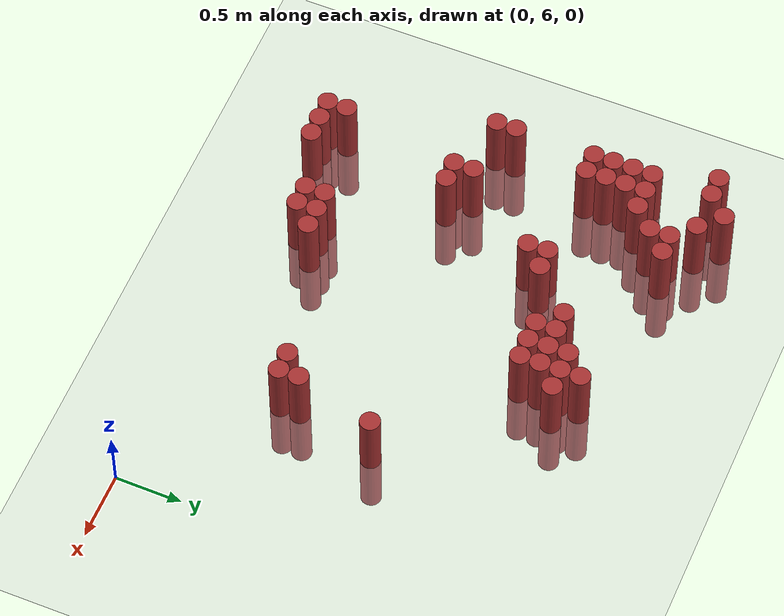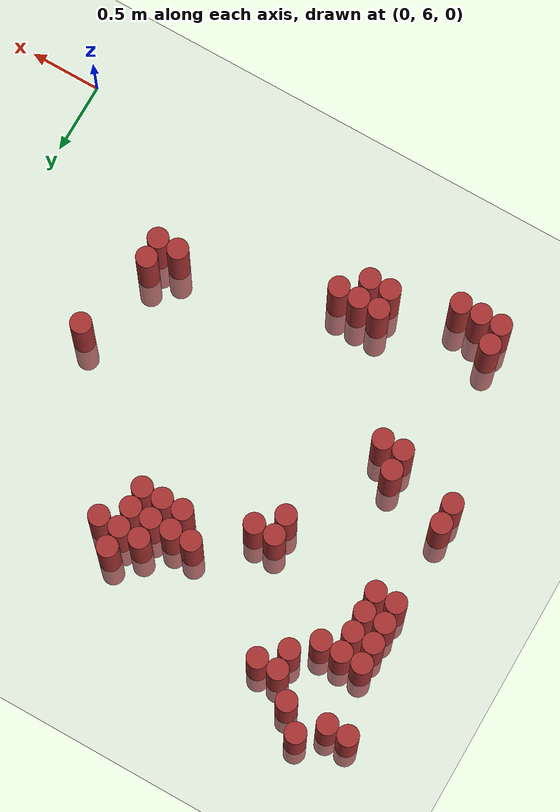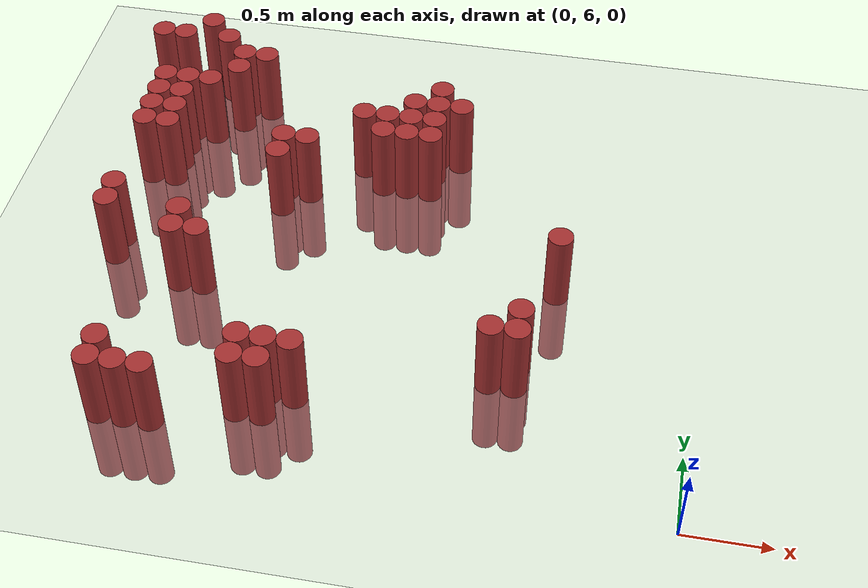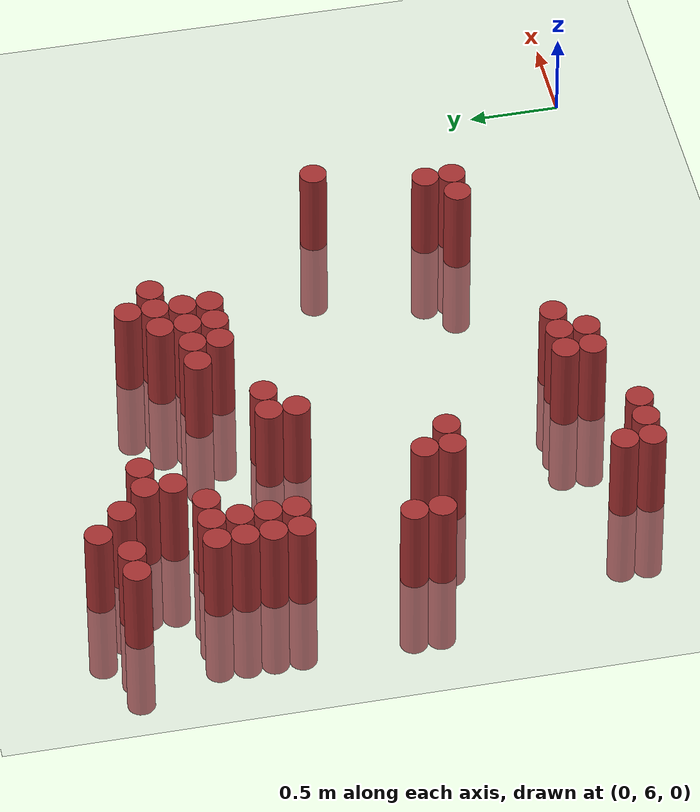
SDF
<sdf version="1.6">
 <world name="default">
  <model name="ground_plane">
   <static>1</static>
   <link name="link">
    <collision name="collision">
     <geometry><plane><normal>0 0 1</normal><size>100 100</size></plane></geometry>
     <surface><friction><ode><mu>100</mu><mu2>50</mu2></ode></friction></surface>
    </collision>
    <visual name="visual">
     <cast_shadows>0</cast_shadows>
     <geometry><plane><normal>0 0 1</normal><size>100 100</size></plane></geometry>
     <material>
      <script><uri>file://media/materials/scripts/gazebo.material</uri><name>Gazebo/Grey</name></script>
     </material>
    </visual>
   </link>
  </model>
  <model name="unit_cylinder_157">
   <static>1</static>
   <pose>-3.675000 9.075000 0.000000 0.000000 0.000000 0.000000</pose>
   <link name="link">
    <inertial>
     <mass>1</mass>
     <inertia><ixx>0.145833</ixx><ixy>0</ixy><ixz>0</ixz><iyy>0.145833</iyy><iyz>0</iyz><izz>0.125</izz></inertia>
    </inertial>
    <collision name="collision">
     <geometry><cylinder><radius>0.075000</radius><length>1</length></cylinder></geometry>
    </collision>
    <visual name="visual">
     <geometry><cylinder><radius>0.075000</radius><length>1</length></cylinder></geometry>
     <material>
      <ambient>0.648000 0.192000 0.192000 1</ambient>
      <diffuse>0.648000 0.192000 0.192000 1</diffuse>
     </material>
     <material>
      <script><name>Gazebo/Grey</name><uri>file://media/materials/scripts/gazebo.material</uri></script>
     </material>
    </visual>
   </link>
  </model>
  <model name="unit_cylinder_158">
   <static>1</static>
   <pose>-3.525000 7.425000 0.000000 0.000000 0.000000 0.000000</pose>
   <link name="link">
    <inertial>
     <mass>1</mass>
     <inertia><ixx>0.145833</ixx><ixy>0</ixy><ixz>0</ixz><iyy>0.145833</iyy><iyz>0</iyz><izz>0.125</izz></inertia>
    </inertial>
    <collision name="collision">
     <geometry><cylinder><radius>0.075000</radius><length>1</length></cylinder></geometry>
    </collision>
    <visual name="visual">
     <geometry><cylinder><radius>0.075000</radius><length>1</length></cylinder></geometry>
     <material>
      <ambient>0.648000 0.192000 0.192000 1</ambient>
      <diffuse>0.648000 0.192000 0.192000 1</diffuse>
     </material>
     <material>
      <script><name>Gazebo/Grey</name><uri>file://media/materials/scripts/gazebo.material</uri></script>
     </material>
    </visual>
   </link>
  </model>
  <model name="unit_cylinder_159">
   <static>1</static>
   <pose>-3.525000 7.575000 0.000000 0.000000 0.000000 0.000000</pose>
   <link name="link">
    <inertial>
     <mass>1</mass>
     <inertia><ixx>0.145833</ixx><ixy>0</ixy><ixz>0</ixz><iyy>0.145833</iyy><iyz>0</iyz><izz>0.125</izz></inertia>
    </inertial>
    <collision name="collision">
     <geometry><cylinder><radius>0.075000</radius><length>1</length></cylinder></geometry>
    </collision>
    <visual name="visual">
     <geometry><cylinder><radius>0.075000</radius><length>1</length></cylinder></geometry>
     <material>
      <ambient>0.648000 0.192000 0.192000 1</ambient>
      <diffuse>0.648000 0.192000 0.192000 1</diffuse>
     </material>
     <material>
      <script><name>Gazebo/Grey</name><uri>file://media/materials/scripts/gazebo.material</uri></script>
     </material>
    </visual>
   </link>
  </model>
  <model name="unit_cylinder_160">
   <static>1</static>
   <pose>-3.525000 8.175000 0.000000 0.000000 0.000000 0.000000</pose>
   <link name="link">
    <inertial>
     <mass>1</mass>
     <inertia><ixx>0.145833</ixx><ixy>0</ixy><ixz>0</ixz><iyy>0.145833</iyy><iyz>0</iyz><izz>0.125</izz></inertia>
    </inertial>
    <collision name="collision">
     <geometry><cylinder><radius>0.075000</radius><length>1</length></cylinder></geometry>
    </collision>
    <visual name="visual">
     <geometry><cylinder><radius>0.075000</radius><length>1</length></cylinder></geometry>
     <material>
      <ambient>0.648000 0.192000 0.192000 1</ambient>
      <diffuse>0.648000 0.192000 0.192000 1</diffuse>
     </material>
     <material>
      <script><name>Gazebo/Grey</name><uri>file://media/materials/scripts/gazebo.material</uri></script>
     </material>
    </visual>
   </link>
  </model>
  <model name="unit_cylinder_161">
   <static>1</static>
   <pose>-3.525000 8.325000 0.000000 0.000000 0.000000 0.000000</pose>
   <link name="link">
    <inertial>
     <mass>1</mass>
     <inertia><ixx>0.145833</ixx><ixy>0</ixy><ixz>0</ixz><iyy>0.145833</iyy><iyz>0</iyz><izz>0.125</izz></inertia>
    </inertial>
    <collision name="collision">
     <geometry><cylinder><radius>0.075000</radius><length>1</length></cylinder></geometry>
    </collision>
    <visual name="visual">
     <geometry><cylinder><radius>0.075000</radius><length>1</length></cylinder></geometry>
     <material>
      <ambient>0.648000 0.192000 0.192000 1</ambient>
      <diffuse>0.648000 0.192000 0.192000 1</diffuse>
     </material>
     <material>
      <script><name>Gazebo/Grey</name><uri>file://media/materials/scripts/gazebo.material</uri></script>
     </material>
    </visual>
   </link>
  </model>
  <model name="unit_cylinder_162">
   <static>1</static>
   <pose>-3.525000 8.475000 0.000000 0.000000 0.000000 0.000000</pose>
   <link name="link">
    <inertial>
     <mass>1</mass>
     <inertia><ixx>0.145833</ixx><ixy>0</ixy><ixz>0</ixz><iyy>0.145833</iyy><iyz>0</iyz><izz>0.125</izz></inertia>
    </inertial>
    <collision name="collision">
     <geometry><cylinder><radius>0.075000</radius><length>1</length></cylinder></geometry>
    </collision>
    <visual name="visual">
     <geometry><cylinder><radius>0.075000</radius><length>1</length></cylinder></geometry>
     <material>
      <ambient>0.648000 0.192000 0.192000 1</ambient>
      <diffuse>0.648000 0.192000 0.192000 1</diffuse>
     </material>
     <material>
      <script><name>Gazebo/Grey</name><uri>file://media/materials/scripts/gazebo.material</uri></script>
     </material>
    </visual>
   </link>
  </model>
  <model name="unit_cylinder_163">
   <static>1</static>
   <pose>-3.525000 8.625000 0.000000 0.000000 0.000000 0.000000</pose>
   <link name="link">
    <inertial>
     <mass>1</mass>
     <inertia><ixx>0.145833</ixx><ixy>0</ixy><ixz>0</ixz><iyy>0.145833</iyy><iyz>0</iyz><izz>0.125</izz></inertia>
    </inertial>
    <collision name="collision">
     <geometry><cylinder><radius>0.075000</radius><length>1</length></cylinder></geometry>
    </collision>
    <visual name="visual">
     <geometry><cylinder><radius>0.075000</radius><length>1</length></cylinder></geometry>
     <material>
      <ambient>0.648000 0.192000 0.192000 1</ambient>
      <diffuse>0.648000 0.192000 0.192000 1</diffuse>
     </material>
     <material>
      <script><name>Gazebo/Grey</name><uri>file://media/materials/scripts/gazebo.material</uri></script>
     </material>
    </visual>
   </link>
  </model>
  <model name="unit_cylinder_164">
   <static>1</static>
   <pose>-3.525000 9.075000 0.000000 0.000000 0.000000 0.000000</pose>
   <link name="link">
    <inertial>
     <mass>1</mass>
     <inertia><ixx>0.145833</ixx><ixy>0</ixy><ixz>0</ixz><iyy>0.145833</iyy><iyz>0</iyz><izz>0.125</izz></inertia>
    </inertial>
    <collision name="collision">
     <geometry><cylinder><radius>0.075000</radius><length>1</length></cylinder></geometry>
    </collision>
    <visual name="visual">
     <geometry><cylinder><radius>0.075000</radius><length>1</length></cylinder></geometry>
     <material>
      <ambient>0.648000 0.192000 0.192000 1</ambient>
      <diffuse>0.648000 0.192000 0.192000 1</diffuse>
     </material>
     <material>
      <script><name>Gazebo/Grey</name><uri>file://media/materials/scripts/gazebo.material</uri></script>
     </material>
    </visual>
   </link>
  </model>
  <model name="unit_cylinder_168">
   <static>1</static>
   <pose>-3.375000 8.175000 0.000000 0.000000 0.000000 0.000000</pose>
   <link name="link">
    <inertial>
     <mass>1</mass>
     <inertia><ixx>0.145833</ixx><ixy>0</ixy><ixz>0</ixz><iyy>0.145833</iyy><iyz>0</iyz><izz>0.125</izz></inertia>
    </inertial>
    <collision name="collision">
     <geometry><cylinder><radius>0.075000</radius><length>1</length></cylinder></geometry>
    </collision>
    <visual name="visual">
     <geometry><cylinder><radius>0.075000</radius><length>1</length></cylinder></geometry>
     <material>
      <ambient>0.648000 0.192000 0.192000 1</ambient>
      <diffuse>0.648000 0.192000 0.192000 1</diffuse>
     </material>
     <material>
      <script><name>Gazebo/Grey</name><uri>file://media/materials/scripts/gazebo.material</uri></script>
     </material>
    </visual>
   </link>
  </model>
  <model name="unit_cylinder_169">
   <static>1</static>
   <pose>-3.375000 8.325000 0.000000 0.000000 0.000000 0.000000</pose>
   <link name="link">
    <inertial>
     <mass>1</mass>
     <inertia><ixx>0.145833</ixx><ixy>0</ixy><ixz>0</ixz><iyy>0.145833</iyy><iyz>0</iyz><izz>0.125</izz></inertia>
    </inertial>
    <collision name="collision">
     <geometry><cylinder><radius>0.075000</radius><length>1</length></cylinder></geometry>
    </collision>
    <visual name="visual">
     <geometry><cylinder><radius>0.075000</radius><length>1</length></cylinder></geometry>
     <material>
      <ambient>0.648000 0.192000 0.192000 1</ambient>
      <diffuse>0.648000 0.192000 0.192000 1</diffuse>
     </material>
     <material>
      <script><name>Gazebo/Grey</name><uri>file://media/materials/scripts/gazebo.material</uri></script>
     </material>
    </visual>
   </link>
  </model>
  <model name="unit_cylinder_170">
   <static>1</static>
   <pose>-3.375000 8.475000 0.000000 0.000000 0.000000 0.000000</pose>
   <link name="link">
    <inertial>
     <mass>1</mass>
     <inertia><ixx>0.145833</ixx><ixy>0</ixy><ixz>0</ixz><iyy>0.145833</iyy><iyz>0</iyz><izz>0.125</izz></inertia>
    </inertial>
    <collision name="collision">
     <geometry><cylinder><radius>0.075000</radius><length>1</length></cylinder></geometry>
    </collision>
    <visual name="visual">
     <geometry><cylinder><radius>0.075000</radius><length>1</length></cylinder></geometry>
     <material>
      <ambient>0.648000 0.192000 0.192000 1</ambient>
      <diffuse>0.648000 0.192000 0.192000 1</diffuse>
     </material>
     <material>
      <script><name>Gazebo/Grey</name><uri>file://media/materials/scripts/gazebo.material</uri></script>
     </material>
    </visual>
   </link>
  </model>
  <model name="unit_cylinder_171">
   <static>1</static>
   <pose>-3.375000 8.625000 0.000000 0.000000 0.000000 0.000000</pose>
   <link name="link">
    <inertial>
     <mass>1</mass>
     <inertia><ixx>0.145833</ixx><ixy>0</ixy><ixz>0</ixz><iyy>0.145833</iyy><iyz>0</iyz><izz>0.125</izz></inertia>
    </inertial>
    <collision name="collision">
     <geometry><cylinder><radius>0.075000</radius><length>1</length></cylinder></geometry>
    </collision>
    <visual name="visual">
     <geometry><cylinder><radius>0.075000</radius><length>1</length></cylinder></geometry>
     <material>
      <ambient>0.648000 0.192000 0.192000 1</ambient>
      <diffuse>0.648000 0.192000 0.192000 1</diffuse>
     </material>
     <material>
      <script><name>Gazebo/Grey</name><uri>file://media/materials/scripts/gazebo.material</uri></script>
     </material>
    </visual>
   </link>
  </model>
  <model name="unit_cylinder_172">
   <static>1</static>
   <pose>-3.375000 9.225000 0.000000 0.000000 0.000000 0.000000</pose>
   <link name="link">
    <inertial>
     <mass>1</mass>
     <inertia><ixx>0.145833</ixx><ixy>0</ixy><ixz>0</ixz><iyy>0.145833</iyy><iyz>0</iyz><izz>0.125</izz></inertia>
    </inertial>
    <collision name="collision">
     <geometry><cylinder><radius>0.075000</radius><length>1</length></cylinder></geometry>
    </collision>
    <visual name="visual">
     <geometry><cylinder><radius>0.075000</radius><length>1</length></cylinder></geometry>
     <material>
      <ambient>0.648000 0.192000 0.192000 1</ambient>
      <diffuse>0.648000 0.192000 0.192000 1</diffuse>
     </material>
     <material>
      <script><name>Gazebo/Grey</name><uri>file://media/materials/scripts/gazebo.material</uri></script>
     </material>
    </visual>
   </link>
  </model>
  <model name="unit_cylinder_176">
   <static>1</static>
   <pose>-3.225000 6.225000 0.000000 0.000000 0.000000 0.000000</pose>
   <link name="link">
    <inertial>
     <mass>1</mass>
     <inertia><ixx>0.145833</ixx><ixy>0</ixy><ixz>0</ixz><iyy>0.145833</iyy><iyz>0</iyz><izz>0.125</izz></inertia>
    </inertial>
    <collision name="collision">
     <geometry><cylinder><radius>0.075000</radius><length>1</length></cylinder></geometry>
    </collision>
    <visual name="visual">
     <geometry><cylinder><radius>0.075000</radius><length>1</length></cylinder></geometry>
     <material>
      <ambient>0.648000 0.192000 0.192000 1</ambient>
      <diffuse>0.648000 0.192000 0.192000 1</diffuse>
     </material>
     <material>
      <script><name>Gazebo/Grey</name><uri>file://media/materials/scripts/gazebo.material</uri></script>
     </material>
    </visual>
   </link>
  </model>
  <model name="unit_cylinder_177">
   <static>1</static>
   <pose>-3.225000 6.375000 0.000000 0.000000 0.000000 0.000000</pose>
   <link name="link">
    <inertial>
     <mass>1</mass>
     <inertia><ixx>0.145833</ixx><ixy>0</ixy><ixz>0</ixz><iyy>0.145833</iyy><iyz>0</iyz><izz>0.125</izz></inertia>
    </inertial>
    <collision name="collision">
     <geometry><cylinder><radius>0.075000</radius><length>1</length></cylinder></geometry>
    </collision>
    <visual name="visual">
     <geometry><cylinder><radius>0.075000</radius><length>1</length></cylinder></geometry>
     <material>
      <ambient>0.648000 0.192000 0.192000 1</ambient>
      <diffuse>0.648000 0.192000 0.192000 1</diffuse>
     </material>
     <material>
      <script><name>Gazebo/Grey</name><uri>file://media/materials/scripts/gazebo.material</uri></script>
     </material>
    </visual>
   </link>
  </model>
  <model name="unit_cylinder_178">
   <static>1</static>
   <pose>-3.225000 8.625000 0.000000 0.000000 0.000000 0.000000</pose>
   <link name="link">
    <inertial>
     <mass>1</mass>
     <inertia><ixx>0.145833</ixx><ixy>0</ixy><ixz>0</ixz><iyy>0.145833</iyy><iyz>0</iyz><izz>0.125</izz></inertia>
    </inertial>
    <collision name="collision">
     <geometry><cylinder><radius>0.075000</radius><length>1</length></cylinder></geometry>
    </collision>
    <visual name="visual">
     <geometry><cylinder><radius>0.075000</radius><length>1</length></cylinder></geometry>
     <material>
      <ambient>0.648000 0.192000 0.192000 1</ambient>
      <diffuse>0.648000 0.192000 0.192000 1</diffuse>
     </material>
     <material>
      <script><name>Gazebo/Grey</name><uri>file://media/materials/scripts/gazebo.material</uri></script>
     </material>
    </visual>
   </link>
  </model>
  <model name="unit_cylinder_179">
   <static>1</static>
   <pose>-3.225000 9.075000 0.000000 0.000000 0.000000 0.000000</pose>
   <link name="link">
    <inertial>
     <mass>1</mass>
     <inertia><ixx>0.145833</ixx><ixy>0</ixy><ixz>0</ixz><iyy>0.145833</iyy><iyz>0</iyz><izz>0.125</izz></inertia>
    </inertial>
    <collision name="collision">
     <geometry><cylinder><radius>0.075000</radius><length>1</length></cylinder></geometry>
    </collision>
    <visual name="visual">
     <geometry><cylinder><radius>0.075000</radius><length>1</length></cylinder></geometry>
     <material>
      <ambient>0.648000 0.192000 0.192000 1</ambient>
      <diffuse>0.648000 0.192000 0.192000 1</diffuse>
     </material>
     <material>
      <script><name>Gazebo/Grey</name><uri>file://media/materials/scripts/gazebo.material</uri></script>
     </material>
    </visual>
   </link>
  </model>
  <model name="unit_cylinder_183">
   <static>1</static>
   <pose>-3.075000 6.225000 0.000000 0.000000 0.000000 0.000000</pose>
   <link name="link">
    <inertial>
     <mass>1</mass>
     <inertia><ixx>0.145833</ixx><ixy>0</ixy><ixz>0</ixz><iyy>0.145833</iyy><iyz>0</iyz><izz>0.125</izz></inertia>
    </inertial>
    <collision name="collision">
     <geometry><cylinder><radius>0.075000</radius><length>1</length></cylinder></geometry>
    </collision>
    <visual name="visual">
     <geometry><cylinder><radius>0.075000</radius><length>1</length></cylinder></geometry>
     <material>
      <ambient>0.648000 0.192000 0.192000 1</ambient>
      <diffuse>0.648000 0.192000 0.192000 1</diffuse>
     </material>
     <material>
      <script><name>Gazebo/Grey</name><uri>file://media/materials/scripts/gazebo.material</uri></script>
     </material>
    </visual>
   </link>
  </model>
  <model name="unit_cylinder_184">
   <static>1</static>
   <pose>-3.075000 7.275000 0.000000 0.000000 0.000000 0.000000</pose>
   <link name="link">
    <inertial>
     <mass>1</mass>
     <inertia><ixx>0.145833</ixx><ixy>0</ixy><ixz>0</ixz><iyy>0.145833</iyy><iyz>0</iyz><izz>0.125</izz></inertia>
    </inertial>
    <collision name="collision">
     <geometry><cylinder><radius>0.075000</radius><length>1</length></cylinder></geometry>
    </collision>
    <visual name="visual">
     <geometry><cylinder><radius>0.075000</radius><length>1</length></cylinder></geometry>
     <material>
      <ambient>0.648000 0.192000 0.192000 1</ambient>
      <diffuse>0.648000 0.192000 0.192000 1</diffuse>
     </material>
     <material>
      <script><name>Gazebo/Grey</name><uri>file://media/materials/scripts/gazebo.material</uri></script>
     </material>
    </visual>
   </link>
  </model>
  <model name="unit_cylinder_185">
   <static>1</static>
   <pose>-3.075000 7.425000 0.000000 0.000000 0.000000 0.000000</pose>
   <link name="link">
    <inertial>
     <mass>1</mass>
     <inertia><ixx>0.145833</ixx><ixy>0</ixy><ixz>0</ixz><iyy>0.145833</iyy><iyz>0</iyz><izz>0.125</izz></inertia>
    </inertial>
    <collision name="collision">
     <geometry><cylinder><radius>0.075000</radius><length>1</length></cylinder></geometry>
    </collision>
    <visual name="visual">
     <geometry><cylinder><radius>0.075000</radius><length>1</length></cylinder></geometry>
     <material>
      <ambient>0.648000 0.192000 0.192000 1</ambient>
      <diffuse>0.648000 0.192000 0.192000 1</diffuse>
     </material>
     <material>
      <script><name>Gazebo/Grey</name><uri>file://media/materials/scripts/gazebo.material</uri></script>
     </material>
    </visual>
   </link>
  </model>
  <model name="unit_cylinder_186">
   <static>1</static>
   <pose>-3.075000 8.775000 0.000000 0.000000 0.000000 0.000000</pose>
   <link name="link">
    <inertial>
     <mass>1</mass>
     <inertia><ixx>0.145833</ixx><ixy>0</ixy><ixz>0</ixz><iyy>0.145833</iyy><iyz>0</iyz><izz>0.125</izz></inertia>
    </inertial>
    <collision name="collision">
     <geometry><cylinder><radius>0.075000</radius><length>1</length></cylinder></geometry>
    </collision>
    <visual name="visual">
     <geometry><cylinder><radius>0.075000</radius><length>1</length></cylinder></geometry>
     <material>
      <ambient>0.648000 0.192000 0.192000 1</ambient>
      <diffuse>0.648000 0.192000 0.192000 1</diffuse>
     </material>
     <material>
      <script><name>Gazebo/Grey</name><uri>file://media/materials/scripts/gazebo.material</uri></script>
     </material>
    </visual>
   </link>
  </model>
  <model name="unit_cylinder_187">
   <static>1</static>
   <pose>-3.075000 8.925000 0.000000 0.000000 0.000000 0.000000</pose>
   <link name="link">
    <inertial>
     <mass>1</mass>
     <inertia><ixx>0.145833</ixx><ixy>0</ixy><ixz>0</ixz><iyy>0.145833</iyy><iyz>0</iyz><izz>0.125</izz></inertia>
    </inertial>
    <collision name="collision">
     <geometry><cylinder><radius>0.075000</radius><length>1</length></cylinder></geometry>
    </collision>
    <visual name="visual">
     <geometry><cylinder><radius>0.075000</radius><length>1</length></cylinder></geometry>
     <material>
      <ambient>0.648000 0.192000 0.192000 1</ambient>
      <diffuse>0.648000 0.192000 0.192000 1</diffuse>
     </material>
     <material>
      <script><name>Gazebo/Grey</name><uri>file://media/materials/scripts/gazebo.material</uri></script>
     </material>
    </visual>
   </link>
  </model>
  <model name="unit_cylinder_189">
   <static>1</static>
   <pose>-2.925000 6.225000 0.000000 0.000000 0.000000 0.000000</pose>
   <link name="link">
    <inertial>
     <mass>1</mass>
     <inertia><ixx>0.145833</ixx><ixy>0</ixy><ixz>0</ixz><iyy>0.145833</iyy><iyz>0</iyz><izz>0.125</izz></inertia>
    </inertial>
    <collision name="collision">
     <geometry><cylinder><radius>0.075000</radius><length>1</length></cylinder></geometry>
    </collision>
    <visual name="visual">
     <geometry><cylinder><radius>0.075000</radius><length>1</length></cylinder></geometry>
     <material>
      <ambient>0.648000 0.192000 0.192000 1</ambient>
      <diffuse>0.648000 0.192000 0.192000 1</diffuse>
     </material>
     <material>
      <script><name>Gazebo/Grey</name><uri>file://media/materials/scripts/gazebo.material</uri></script>
     </material>
    </visual>
   </link>
  </model>
  <model name="unit_cylinder_190">
   <static>1</static>
   <pose>-2.925000 7.275000 0.000000 0.000000 0.000000 0.000000</pose>
   <link name="link">
    <inertial>
     <mass>1</mass>
     <inertia><ixx>0.145833</ixx><ixy>0</ixy><ixz>0</ixz><iyy>0.145833</iyy><iyz>0</iyz><izz>0.125</izz></inertia>
    </inertial>
    <collision name="collision">
     <geometry><cylinder><radius>0.075000</radius><length>1</length></cylinder></geometry>
    </collision>
    <visual name="visual">
     <geometry><cylinder><radius>0.075000</radius><length>1</length></cylinder></geometry>
     <material>
      <ambient>0.648000 0.192000 0.192000 1</ambient>
      <diffuse>0.648000 0.192000 0.192000 1</diffuse>
     </material>
     <material>
      <script><name>Gazebo/Grey</name><uri>file://media/materials/scripts/gazebo.material</uri></script>
     </material>
    </visual>
   </link>
  </model>
  <model name="unit_cylinder_191">
   <static>1</static>
   <pose>-2.925000 8.925000 0.000000 0.000000 0.000000 0.000000</pose>
   <link name="link">
    <inertial>
     <mass>1</mass>
     <inertia><ixx>0.145833</ixx><ixy>0</ixy><ixz>0</ixz><iyy>0.145833</iyy><iyz>0</iyz><izz>0.125</izz></inertia>
    </inertial>
    <collision name="collision">
     <geometry><cylinder><radius>0.075000</radius><length>1</length></cylinder></geometry>
    </collision>
    <visual name="visual">
     <geometry><cylinder><radius>0.075000</radius><length>1</length></cylinder></geometry>
     <material>
      <ambient>0.648000 0.192000 0.192000 1</ambient>
      <diffuse>0.648000 0.192000 0.192000 1</diffuse>
     </material>
     <material>
      <script><name>Gazebo/Grey</name><uri>file://media/materials/scripts/gazebo.material</uri></script>
     </material>
    </visual>
   </link>
  </model>
  <model name="unit_cylinder_196">
   <static>1</static>
   <pose>-2.625000 8.025000 0.000000 0.000000 0.000000 0.000000</pose>
   <link name="link">
    <inertial>
     <mass>1</mass>
     <inertia><ixx>0.145833</ixx><ixy>0</ixy><ixz>0</ixz><iyy>0.145833</iyy><iyz>0</iyz><izz>0.125</izz></inertia>
    </inertial>
    <collision name="collision">
     <geometry><cylinder><radius>0.075000</radius><length>1</length></cylinder></geometry>
    </collision>
    <visual name="visual">
     <geometry><cylinder><radius>0.075000</radius><length>1</length></cylinder></geometry>
     <material>
      <ambient>0.648000 0.192000 0.192000 1</ambient>
      <diffuse>0.648000 0.192000 0.192000 1</diffuse>
     </material>
     <material>
      <script><name>Gazebo/Grey</name><uri>file://media/materials/scripts/gazebo.material</uri></script>
     </material>
    </visual>
   </link>
  </model>
  <model name="unit_cylinder_197">
   <static>1</static>
   <pose>-2.625000 8.175000 0.000000 0.000000 0.000000 0.000000</pose>
   <link name="link">
    <inertial>
     <mass>1</mass>
     <inertia><ixx>0.145833</ixx><ixy>0</ixy><ixz>0</ixz><iyy>0.145833</iyy><iyz>0</iyz><izz>0.125</izz></inertia>
    </inertial>
    <collision name="collision">
     <geometry><cylinder><radius>0.075000</radius><length>1</length></cylinder></geometry>
    </collision>
    <visual name="visual">
     <geometry><cylinder><radius>0.075000</radius><length>1</length></cylinder></geometry>
     <material>
      <ambient>0.648000 0.192000 0.192000 1</ambient>
      <diffuse>0.648000 0.192000 0.192000 1</diffuse>
     </material>
     <material>
      <script><name>Gazebo/Grey</name><uri>file://media/materials/scripts/gazebo.material</uri></script>
     </material>
    </visual>
   </link>
  </model>
  <model name="unit_cylinder_198">
   <static>1</static>
   <pose>-2.475000 6.375000 0.000000 0.000000 0.000000 0.000000</pose>
   <link name="link">
    <inertial>
     <mass>1</mass>
     <inertia><ixx>0.145833</ixx><ixy>0</ixy><ixz>0</ixz><iyy>0.145833</iyy><iyz>0</iyz><izz>0.125</izz></inertia>
    </inertial>
    <collision name="collision">
     <geometry><cylinder><radius>0.075000</radius><length>1</length></cylinder></geometry>
    </collision>
    <visual name="visual">
     <geometry><cylinder><radius>0.075000</radius><length>1</length></cylinder></geometry>
     <material>
      <ambient>0.648000 0.192000 0.192000 1</ambient>
      <diffuse>0.648000 0.192000 0.192000 1</diffuse>
     </material>
     <material>
      <script><name>Gazebo/Grey</name><uri>file://media/materials/scripts/gazebo.material</uri></script>
     </material>
    </visual>
   </link>
  </model>
  <model name="unit_cylinder_199">
   <static>1</static>
   <pose>-2.475000 6.525000 0.000000 0.000000 0.000000 0.000000</pose>
   <link name="link">
    <inertial>
     <mass>1</mass>
     <inertia><ixx>0.145833</ixx><ixy>0</ixy><ixz>0</ixz><iyy>0.145833</iyy><iyz>0</iyz><izz>0.125</izz></inertia>
    </inertial>
    <collision name="collision">
     <geometry><cylinder><radius>0.075000</radius><length>1</length></cylinder></geometry>
    </collision>
    <visual name="visual">
     <geometry><cylinder><radius>0.075000</radius><length>1</length></cylinder></geometry>
     <material>
      <ambient>0.648000 0.192000 0.192000 1</ambient>
      <diffuse>0.648000 0.192000 0.192000 1</diffuse>
     </material>
     <material>
      <script><name>Gazebo/Grey</name><uri>file://media/materials/scripts/gazebo.material</uri></script>
     </material>
    </visual>
   </link>
  </model>
  <model name="unit_cylinder_200">
   <static>1</static>
   <pose>-2.475000 8.175000 0.000000 0.000000 0.000000 0.000000</pose>
   <link name="link">
    <inertial>
     <mass>1</mass>
     <inertia><ixx>0.145833</ixx><ixy>0</ixy><ixz>0</ixz><iyy>0.145833</iyy><iyz>0</iyz><izz>0.125</izz></inertia>
    </inertial>
    <collision name="collision">
     <geometry><cylinder><radius>0.075000</radius><length>1</length></cylinder></geometry>
    </collision>
    <visual name="visual">
     <geometry><cylinder><radius>0.075000</radius><length>1</length></cylinder></geometry>
     <material>
      <ambient>0.648000 0.192000 0.192000 1</ambient>
      <diffuse>0.648000 0.192000 0.192000 1</diffuse>
     </material>
     <material>
      <script><name>Gazebo/Grey</name><uri>file://media/materials/scripts/gazebo.material</uri></script>
     </material>
    </visual>
   </link>
  </model>
  <model name="unit_cylinder_201">
   <static>1</static>
   <pose>-2.325000 6.375000 0.000000 0.000000 0.000000 0.000000</pose>
   <link name="link">
    <inertial>
     <mass>1</mass>
     <inertia><ixx>0.145833</ixx><ixy>0</ixy><ixz>0</ixz><iyy>0.145833</iyy><iyz>0</iyz><izz>0.125</izz></inertia>
    </inertial>
    <collision name="collision">
     <geometry><cylinder><radius>0.075000</radius><length>1</length></cylinder></geometry>
    </collision>
    <visual name="visual">
     <geometry><cylinder><radius>0.075000</radius><length>1</length></cylinder></geometry>
     <material>
      <ambient>0.648000 0.192000 0.192000 1</ambient>
      <diffuse>0.648000 0.192000 0.192000 1</diffuse>
     </material>
     <material>
      <script><name>Gazebo/Grey</name><uri>file://media/materials/scripts/gazebo.material</uri></script>
     </material>
    </visual>
   </link>
  </model>
  <model name="unit_cylinder_202">
   <static>1</static>
   <pose>-2.325000 6.525000 0.000000 0.000000 0.000000 0.000000</pose>
   <link name="link">
    <inertial>
     <mass>1</mass>
     <inertia><ixx>0.145833</ixx><ixy>0</ixy><ixz>0</ixz><iyy>0.145833</iyy><iyz>0</iyz><izz>0.125</izz></inertia>
    </inertial>
    <collision name="collision">
     <geometry><cylinder><radius>0.075000</radius><length>1</length></cylinder></geometry>
    </collision>
    <visual name="visual">
     <geometry><cylinder><radius>0.075000</radius><length>1</length></cylinder></geometry>
     <material>
      <ambient>0.648000 0.192000 0.192000 1</ambient>
      <diffuse>0.648000 0.192000 0.192000 1</diffuse>
     </material>
     <material>
      <script><name>Gazebo/Grey</name><uri>file://media/materials/scripts/gazebo.material</uri></script>
     </material>
    </visual>
   </link>
  </model>
  <model name="unit_cylinder_203">
   <static>1</static>
   <pose>-2.175000 6.525000 0.000000 0.000000 0.000000 0.000000</pose>
   <link name="link">
    <inertial>
     <mass>1</mass>
     <inertia><ixx>0.145833</ixx><ixy>0</ixy><ixz>0</ixz><iyy>0.145833</iyy><iyz>0</iyz><izz>0.125</izz></inertia>
    </inertial>
    <collision name="collision">
     <geometry><cylinder><radius>0.075000</radius><length>1</length></cylinder></geometry>
    </collision>
    <visual name="visual">
     <geometry><cylinder><radius>0.075000</radius><length>1</length></cylinder></geometry>
     <material>
      <ambient>0.648000 0.192000 0.192000 1</ambient>
      <diffuse>0.648000 0.192000 0.192000 1</diffuse>
     </material>
     <material>
      <script><name>Gazebo/Grey</name><uri>file://media/materials/scripts/gazebo.material</uri></script>
     </material>
    </visual>
   </link>
  </model>
  <model name="unit_cylinder_204">
   <static>1</static>
   <pose>-2.175000 8.475000 0.000000 0.000000 0.000000 0.000000</pose>
   <link name="link">
    <inertial>
     <mass>1</mass>
     <inertia><ixx>0.145833</ixx><ixy>0</ixy><ixz>0</ixz><iyy>0.145833</iyy><iyz>0</iyz><izz>0.125</izz></inertia>
    </inertial>
    <collision name="collision">
     <geometry><cylinder><radius>0.075000</radius><length>1</length></cylinder></geometry>
    </collision>
    <visual name="visual">
     <geometry><cylinder><radius>0.075000</radius><length>1</length></cylinder></geometry>
     <material>
      <ambient>0.648000 0.192000 0.192000 1</ambient>
      <diffuse>0.648000 0.192000 0.192000 1</diffuse>
     </material>
     <material>
      <script><name>Gazebo/Grey</name><uri>file://media/materials/scripts/gazebo.material</uri></script>
     </material>
    </visual>
   </link>
  </model>
  <model name="unit_cylinder_205">
   <static>1</static>
   <pose>-2.025000 8.325000 0.000000 0.000000 0.000000 0.000000</pose>
   <link name="link">
    <inertial>
     <mass>1</mass>
     <inertia><ixx>0.145833</ixx><ixy>0</ixy><ixz>0</ixz><iyy>0.145833</iyy><iyz>0</iyz><izz>0.125</izz></inertia>
    </inertial>
    <collision name="collision">
     <geometry><cylinder><radius>0.075000</radius><length>1</length></cylinder></geometry>
    </collision>
    <visual name="visual">
     <geometry><cylinder><radius>0.075000</radius><length>1</length></cylinder></geometry>
     <material>
      <ambient>0.648000 0.192000 0.192000 1</ambient>
      <diffuse>0.648000 0.192000 0.192000 1</diffuse>
     </material>
     <material>
      <script><name>Gazebo/Grey</name><uri>file://media/materials/scripts/gazebo.material</uri></script>
     </material>
    </visual>
   </link>
  </model>
  <model name="unit_cylinder_206">
   <static>1</static>
   <pose>-2.025000 8.475000 0.000000 0.000000 0.000000 0.000000</pose>
   <link name="link">
    <inertial>
     <mass>1</mass>
     <inertia><ixx>0.145833</ixx><ixy>0</ixy><ixz>0</ixz><iyy>0.145833</iyy><iyz>0</iyz><izz>0.125</izz></inertia>
    </inertial>
    <collision name="collision">
     <geometry><cylinder><radius>0.075000</radius><length>1</length></cylinder></geometry>
    </collision>
    <visual name="visual">
     <geometry><cylinder><radius>0.075000</radius><length>1</length></cylinder></geometry>
     <material>
      <ambient>0.648000 0.192000 0.192000 1</ambient>
      <diffuse>0.648000 0.192000 0.192000 1</diffuse>
     </material>
     <material>
      <script><name>Gazebo/Grey</name><uri>file://media/materials/scripts/gazebo.material</uri></script>
     </material>
    </visual>
   </link>
  </model>
  <model name="unit_cylinder_207">
   <static>1</static>
   <pose>-1.875000 8.325000 0.000000 0.000000 0.000000 0.000000</pose>
   <link name="link">
    <inertial>
     <mass>1</mass>
     <inertia><ixx>0.145833</ixx><ixy>0</ixy><ixz>0</ixz><iyy>0.145833</iyy><iyz>0</iyz><izz>0.125</izz></inertia>
    </inertial>
    <collision name="collision">
     <geometry><cylinder><radius>0.075000</radius><length>1</length></cylinder></geometry>
    </collision>
    <visual name="visual">
     <geometry><cylinder><radius>0.075000</radius><length>1</length></cylinder></geometry>
     <material>
      <ambient>0.648000 0.192000 0.192000 1</ambient>
      <diffuse>0.648000 0.192000 0.192000 1</diffuse>
     </material>
     <material>
      <script><name>Gazebo/Grey</name><uri>file://media/materials/scripts/gazebo.material</uri></script>
     </material>
    </visual>
   </link>
  </model>
  <model name="unit_cylinder_208">
   <static>1</static>
   <pose>-1.875000 8.475000 0.000000 0.000000 0.000000 0.000000</pose>
   <link name="link">
    <inertial>
     <mass>1</mass>
     <inertia><ixx>0.145833</ixx><ixy>0</ixy><ixz>0</ixz><iyy>0.145833</iyy><iyz>0</iyz><izz>0.125</izz></inertia>
    </inertial>
    <collision name="collision">
     <geometry><cylinder><radius>0.075000</radius><length>1</length></cylinder></geometry>
    </collision>
    <visual name="visual">
     <geometry><cylinder><radius>0.075000</radius><length>1</length></cylinder></geometry>
     <material>
      <ambient>0.648000 0.192000 0.192000 1</ambient>
      <diffuse>0.648000 0.192000 0.192000 1</diffuse>
     </material>
     <material>
      <script><name>Gazebo/Grey</name><uri>file://media/materials/scripts/gazebo.material</uri></script>
     </material>
    </visual>
   </link>
  </model>
  <model name="unit_cylinder_209">
   <static>1</static>
   <pose>-1.875000 8.625000 0.000000 0.000000 0.000000 0.000000</pose>
   <link name="link">
    <inertial>
     <mass>1</mass>
     <inertia><ixx>0.145833</ixx><ixy>0</ixy><ixz>0</ixz><iyy>0.145833</iyy><iyz>0</iyz><izz>0.125</izz></inertia>
    </inertial>
    <collision name="collision">
     <geometry><cylinder><radius>0.075000</radius><length>1</length></cylinder></geometry>
    </collision>
    <visual name="visual">
     <geometry><cylinder><radius>0.075000</radius><length>1</length></cylinder></geometry>
     <material>
      <ambient>0.648000 0.192000 0.192000 1</ambient>
      <diffuse>0.648000 0.192000 0.192000 1</diffuse>
     </material>
     <material>
      <script><name>Gazebo/Grey</name><uri>file://media/materials/scripts/gazebo.material</uri></script>
     </material>
    </visual>
   </link>
  </model>
  <model name="unit_cylinder_210">
   <static>1</static>
   <pose>-1.725000 8.325000 0.000000 0.000000 0.000000 0.000000</pose>
   <link name="link">
    <inertial>
     <mass>1</mass>
     <inertia><ixx>0.145833</ixx><ixy>0</ixy><ixz>0</ixz><iyy>0.145833</iyy><iyz>0</iyz><izz>0.125</izz></inertia>
    </inertial>
    <collision name="collision">
     <geometry><cylinder><radius>0.075000</radius><length>1</length></cylinder></geometry>
    </collision>
    <visual name="visual">
     <geometry><cylinder><radius>0.075000</radius><length>1</length></cylinder></geometry>
     <material>
      <ambient>0.648000 0.192000 0.192000 1</ambient>
      <diffuse>0.648000 0.192000 0.192000 1</diffuse>
     </material>
     <material>
      <script><name>Gazebo/Grey</name><uri>file://media/materials/scripts/gazebo.material</uri></script>
     </material>
    </visual>
   </link>
  </model>
  <model name="unit_cylinder_211">
   <static>1</static>
   <pose>-1.725000 8.475000 0.000000 0.000000 0.000000 0.000000</pose>
   <link name="link">
    <inertial>
     <mass>1</mass>
     <inertia><ixx>0.145833</ixx><ixy>0</ixy><ixz>0</ixz><iyy>0.145833</iyy><iyz>0</iyz><izz>0.125</izz></inertia>
    </inertial>
    <collision name="collision">
     <geometry><cylinder><radius>0.075000</radius><length>1</length></cylinder></geometry>
    </collision>
    <visual name="visual">
     <geometry><cylinder><radius>0.075000</radius><length>1</length></cylinder></geometry>
     <material>
      <ambient>0.648000 0.192000 0.192000 1</ambient>
      <diffuse>0.648000 0.192000 0.192000 1</diffuse>
     </material>
     <material>
      <script><name>Gazebo/Grey</name><uri>file://media/materials/scripts/gazebo.material</uri></script>
     </material>
    </visual>
   </link>
  </model>
  <model name="unit_cylinder_212">
   <static>1</static>
   <pose>-1.725000 8.625000 0.000000 0.000000 0.000000 0.000000</pose>
   <link name="link">
    <inertial>
     <mass>1</mass>
     <inertia><ixx>0.145833</ixx><ixy>0</ixy><ixz>0</ixz><iyy>0.145833</iyy><iyz>0</iyz><izz>0.125</izz></inertia>
    </inertial>
    <collision name="collision">
     <geometry><cylinder><radius>0.075000</radius><length>1</length></cylinder></geometry>
    </collision>
    <visual name="visual">
     <geometry><cylinder><radius>0.075000</radius><length>1</length></cylinder></geometry>
     <material>
      <ambient>0.648000 0.192000 0.192000 1</ambient>
      <diffuse>0.648000 0.192000 0.192000 1</diffuse>
     </material>
     <material>
      <script><name>Gazebo/Grey</name><uri>file://media/materials/scripts/gazebo.material</uri></script>
     </material>
    </visual>
   </link>
  </model>
  <model name="unit_cylinder_213">
   <static>1</static>
   <pose>-1.725000 8.775000 0.000000 0.000000 0.000000 0.000000</pose>
   <link name="link">
    <inertial>
     <mass>1</mass>
     <inertia><ixx>0.145833</ixx><ixy>0</ixy><ixz>0</ixz><iyy>0.145833</iyy><iyz>0</iyz><izz>0.125</izz></inertia>
    </inertial>
    <collision name="collision">
     <geometry><cylinder><radius>0.075000</radius><length>1</length></cylinder></geometry>
    </collision>
    <visual name="visual">
     <geometry><cylinder><radius>0.075000</radius><length>1</length></cylinder></geometry>
     <material>
      <ambient>0.648000 0.192000 0.192000 1</ambient>
      <diffuse>0.648000 0.192000 0.192000 1</diffuse>
     </material>
     <material>
      <script><name>Gazebo/Grey</name><uri>file://media/materials/scripts/gazebo.material</uri></script>
     </material>
    </visual>
   </link>
  </model>
  <model name="unit_cylinder_215">
   <static>1</static>
   <pose>-1.575000 8.625000 0.000000 0.000000 0.000000 0.000000</pose>
   <link name="link">
    <inertial>
     <mass>1</mass>
     <inertia><ixx>0.145833</ixx><ixy>0</ixy><ixz>0</ixz><iyy>0.145833</iyy><iyz>0</iyz><izz>0.125</izz></inertia>
    </inertial>
    <collision name="collision">
     <geometry><cylinder><radius>0.075000</radius><length>1</length></cylinder></geometry>
    </collision>
    <visual name="visual">
     <geometry><cylinder><radius>0.075000</radius><length>1</length></cylinder></geometry>
     <material>
      <ambient>0.648000 0.192000 0.192000 1</ambient>
      <diffuse>0.648000 0.192000 0.192000 1</diffuse>
     </material>
     <material>
      <script><name>Gazebo/Grey</name><uri>file://media/materials/scripts/gazebo.material</uri></script>
     </material>
    </visual>
   </link>
  </model>
  <model name="unit_cylinder_218">
   <static>1</static>
   <pose>-1.125000 6.825000 0.000000 0.000000 0.000000 0.000000</pose>
   <link name="link">
    <inertial>
     <mass>1</mass>
     <inertia><ixx>0.145833</ixx><ixy>0</ixy><ixz>0</ixz><iyy>0.145833</iyy><iyz>0</iyz><izz>0.125</izz></inertia>
    </inertial>
    <collision name="collision">
     <geometry><cylinder><radius>0.075000</radius><length>1</length></cylinder></geometry>
    </collision>
    <visual name="visual">
     <geometry><cylinder><radius>0.075000</radius><length>1</length></cylinder></geometry>
     <material>
      <ambient>0.648000 0.192000 0.192000 1</ambient>
      <diffuse>0.648000 0.192000 0.192000 1</diffuse>
     </material>
     <material>
      <script><name>Gazebo/Grey</name><uri>file://media/materials/scripts/gazebo.material</uri></script>
     </material>
    </visual>
   </link>
  </model>
  <model name="unit_cylinder_220">
   <static>1</static>
   <pose>-0.975000 6.825000 0.000000 0.000000 0.000000 0.000000</pose>
   <link name="link">
    <inertial>
     <mass>1</mass>
     <inertia><ixx>0.145833</ixx><ixy>0</ixy><ixz>0</ixz><iyy>0.145833</iyy><iyz>0</iyz><izz>0.125</izz></inertia>
    </inertial>
    <collision name="collision">
     <geometry><cylinder><radius>0.075000</radius><length>1</length></cylinder></geometry>
    </collision>
    <visual name="visual">
     <geometry><cylinder><radius>0.075000</radius><length>1</length></cylinder></geometry>
     <material>
      <ambient>0.648000 0.192000 0.192000 1</ambient>
      <diffuse>0.648000 0.192000 0.192000 1</diffuse>
     </material>
     <material>
      <script><name>Gazebo/Grey</name><uri>file://media/materials/scripts/gazebo.material</uri></script>
     </material>
    </visual>
   </link>
  </model>
  <model name="unit_cylinder_221">
   <static>1</static>
   <pose>-0.975000 6.975000 0.000000 0.000000 0.000000 0.000000</pose>
   <link name="link">
    <inertial>
     <mass>1</mass>
     <inertia><ixx>0.145833</ixx><ixy>0</ixy><ixz>0</ixz><iyy>0.145833</iyy><iyz>0</iyz><izz>0.125</izz></inertia>
    </inertial>
    <collision name="collision">
     <geometry><cylinder><radius>0.075000</radius><length>1</length></cylinder></geometry>
    </collision>
    <visual name="visual">
     <geometry><cylinder><radius>0.075000</radius><length>1</length></cylinder></geometry>
     <material>
      <ambient>0.648000 0.192000 0.192000 1</ambient>
      <diffuse>0.648000 0.192000 0.192000 1</diffuse>
     </material>
     <material>
      <script><name>Gazebo/Grey</name><uri>file://media/materials/scripts/gazebo.material</uri></script>
     </material>
    </visual>
   </link>
  </model>
  <model name="unit_cylinder_224">
   <static>1</static>
   <pose>-0.825000 7.575000 0.000000 0.000000 0.000000 0.000000</pose>
   <link name="link">
    <inertial>
     <mass>1</mass>
     <inertia><ixx>0.145833</ixx><ixy>0</ixy><ixz>0</ixz><iyy>0.145833</iyy><iyz>0</iyz><izz>0.125</izz></inertia>
    </inertial>
    <collision name="collision">
     <geometry><cylinder><radius>0.075000</radius><length>1</length></cylinder></geometry>
    </collision>
    <visual name="visual">
     <geometry><cylinder><radius>0.075000</radius><length>1</length></cylinder></geometry>
     <material>
      <ambient>0.648000 0.192000 0.192000 1</ambient>
      <diffuse>0.648000 0.192000 0.192000 1</diffuse>
     </material>
     <material>
      <script><name>Gazebo/Grey</name><uri>file://media/materials/scripts/gazebo.material</uri></script>
     </material>
    </visual>
   </link>
  </model>
 </world>
</sdf>
